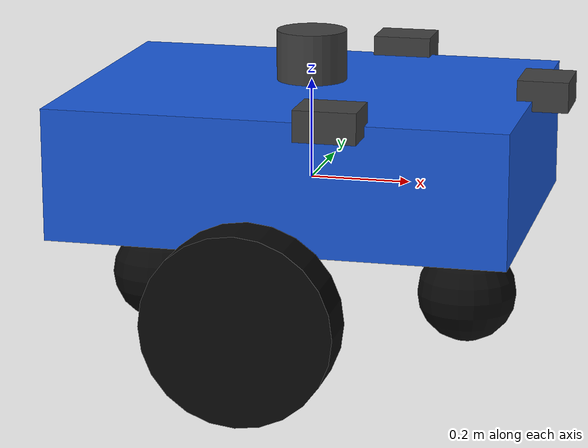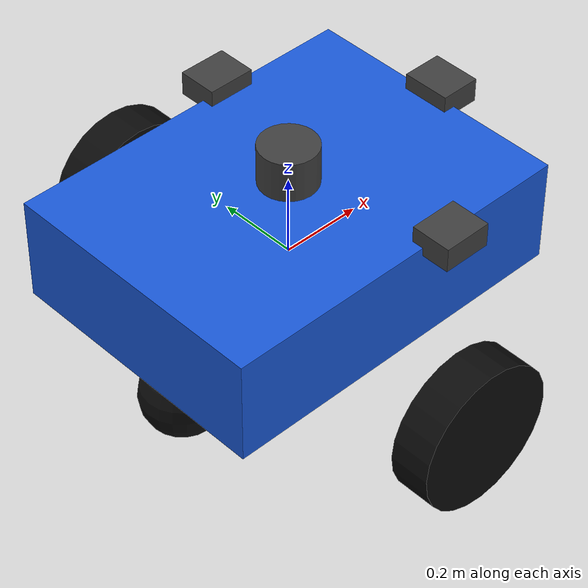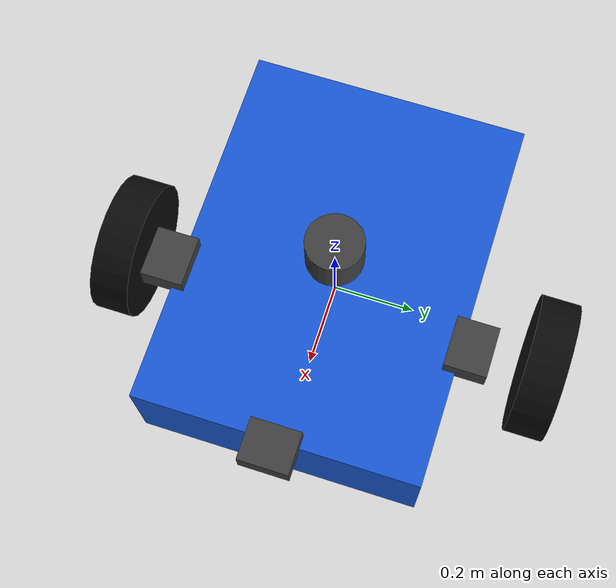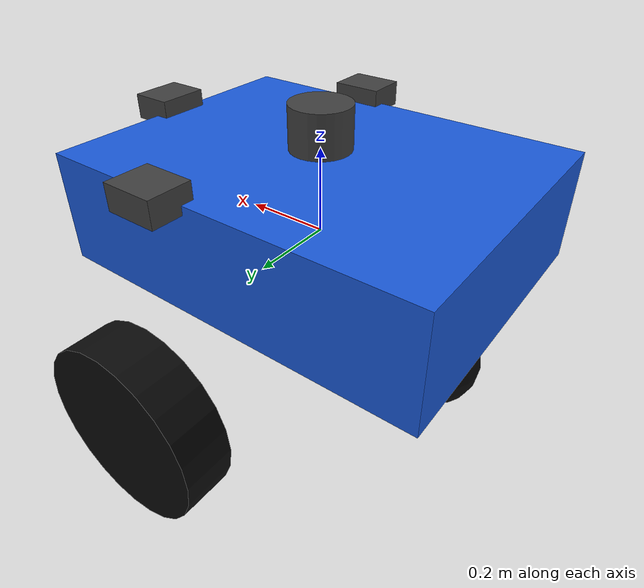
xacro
<?xml version="1.0"?>
<robot name="wildos_rover" xmlns:xacro="http://www.ros.org/wiki/xacro">
  <material name="body_blue">
    <color rgba="0.10 0.35 0.85 1.0"/>
  </material>
  <material name="wheel_dark">
    <color rgba="0.04 0.04 0.04 1.0"/>
  </material>
  <material name="sensor_gray">
    <color rgba="0.25 0.25 0.25 1.0"/>
  </material>

  <link name="base_link">
    <inertial>
      <!-- Ballast low in the chassis: the stand-in rover is 22 kg on 0.78 m
           wheels and rolled over on the bank in front of the house at
           0.8 m/s with the centre of mass at axle height. -->
      <origin xyz="0 0 -0.18" rpy="0 0 0"/>
      <mass value="18.0"/>
      <inertia ixx="0.50" ixy="0" ixz="0" iyy="0.82" iyz="0" izz="1.10"/>
    </inertial>
    <collision>
      <origin xyz="0 0 0.06" rpy="0 0 0"/>
      <geometry>
        <box size="0.90 0.68 0.26"/>
      </geometry>
    </collision>
    <visual>
      <origin xyz="0 0 0.06" rpy="0 0 0"/>
      <geometry>
        <box size="0.90 0.68 0.26"/>
      </geometry>
      <material name="body_blue"/>
    </visual>
  </link>

  <link name="left_wheel_link">
    <inertial>
      <origin xyz="0 0 0" rpy="0 0 0"/>
      <mass value="1.5"/>
      <inertia ixx="0.012" ixy="0" ixz="0" iyy="0.024" iyz="0" izz="0.012"/>
    </inertial>
    <collision>
      <origin xyz="0 0 0" rpy="1.5708 0 0"/>
      <geometry>
        <cylinder radius="0.18" length="0.10"/>
      </geometry>
    </collision>
    <visual>
      <origin xyz="0 0 0" rpy="1.5708 0 0"/>
      <geometry>
        <cylinder radius="0.18" length="0.10"/>
      </geometry>
      <material name="wheel_dark"/>
    </visual>
  </link>

  <link name="right_wheel_link">
    <inertial>
      <origin xyz="0 0 0" rpy="0 0 0"/>
      <mass value="1.5"/>
      <inertia ixx="0.012" ixy="0" ixz="0" iyy="0.024" iyz="0" izz="0.012"/>
    </inertial>
    <collision>
      <origin xyz="0 0 0" rpy="1.5708 0 0"/>
      <geometry>
        <cylinder radius="0.18" length="0.10"/>
      </geometry>
    </collision>
    <visual>
      <origin xyz="0 0 0" rpy="1.5708 0 0"/>
      <geometry>
        <cylinder radius="0.18" length="0.10"/>
      </geometry>
      <material name="wheel_dark"/>
    </visual>
  </link>

  <joint name="left_wheel_joint" type="continuous">
    <parent link="base_link"/>
    <child link="left_wheel_link"/>
    <origin xyz="0 0.55 -0.14" rpy="0 0 0"/>
    <axis xyz="0 1 0"/>
    <limit effort="100" velocity="20"/>
  </joint>

  <joint name="right_wheel_joint" type="continuous">
    <parent link="base_link"/>
    <child link="right_wheel_link"/>
    <origin xyz="0 -0.55 -0.14" rpy="0 0 0"/>
    <axis xyz="0 1 0"/>
    <limit effort="100" velocity="20"/>
  </joint>

  <link name="front_caster_link">
    <inertial>
      <mass value="0.2"/>
      <inertia ixx="0.001" ixy="0" ixz="0" iyy="0.001" iyz="0" izz="0.001"/>
    </inertial>
    <collision>
      <geometry><sphere radius="0.10"/></geometry>
    </collision>
    <visual>
      <geometry><sphere radius="0.10"/></geometry>
      <material name="wheel_dark"/>
    </visual>
  </link>

  <link name="rear_caster_link">
    <inertial>
      <mass value="0.2"/>
      <inertia ixx="0.001" ixy="0" ixz="0" iyy="0.001" iyz="0" izz="0.001"/>
    </inertial>
    <collision>
      <geometry><sphere radius="0.10"/></geometry>
    </collision>
    <visual>
      <geometry><sphere radius="0.10"/></geometry>
      <material name="wheel_dark"/>
    </visual>
  </link>

  <joint name="front_caster_joint" type="fixed">
    <parent link="base_link"/>
    <child link="front_caster_link"/>
    <origin xyz="0.32 0 -0.22" rpy="0 0 0"/>
  </joint>
  <joint name="rear_caster_joint" type="fixed">
    <parent link="base_link"/>
    <child link="rear_caster_link"/>
    <origin xyz="-0.32 0 -0.22" rpy="0 0 0"/>
  </joint>

  <link name="front_camera_link">
    <inertial>
      <mass value="0.1"/>
      <inertia ixx="0.0001" ixy="0" ixz="0" iyy="0.0001" iyz="0" izz="0.0001"/>
    </inertial>
    <visual>
      <geometry><box size="0.10 0.12 0.06"/></geometry>
      <material name="sensor_gray"/>
    </visual>
  </link>
  <joint name="front_camera_joint" type="fixed">
    <parent link="base_link"/>
    <child link="front_camera_link"/>
    <origin xyz="0.47 0 0.20" rpy="0 0 0"/>
  </joint>

  <link name="left_camera_link">
    <inertial>
      <mass value="0.1"/>
      <inertia ixx="0.0001" ixy="0" ixz="0" iyy="0.0001" iyz="0" izz="0.0001"/>
    </inertial>
    <visual>
      <geometry><box size="0.10 0.12 0.06"/></geometry>
      <material name="sensor_gray"/>
    </visual>
  </link>
  <joint name="left_camera_joint" type="fixed">
    <parent link="base_link"/>
    <child link="left_camera_link"/>
    <origin xyz="0.12 0.36 0.20" rpy="0 0 1.5708"/>
  </joint>

  <link name="right_camera_link">
    <inertial>
      <mass value="0.1"/>
      <inertia ixx="0.0001" ixy="0" ixz="0" iyy="0.0001" iyz="0" izz="0.0001"/>
    </inertial>
    <visual>
      <geometry><box size="0.10 0.12 0.06"/></geometry>
      <material name="sensor_gray"/>
    </visual>
  </link>
  <joint name="right_camera_joint" type="fixed">
    <parent link="base_link"/>
    <child link="right_camera_link"/>
    <origin xyz="0.12 -0.36 0.20" rpy="0 0 -1.5708"/>
  </joint>

  <link name="lidar_link">
    <inertial>
      <mass value="0.5"/>
      <inertia ixx="0.002" ixy="0" ixz="0" iyy="0.002" iyz="0" izz="0.002"/>
    </inertial>
    <visual>
      <geometry><cylinder radius="0.07" length="0.10"/></geometry>
      <material name="sensor_gray"/>
    </visual>
  </link>
  <joint name="lidar_joint" type="fixed">
    <parent link="base_link"/>
    <child link="lidar_link"/>
    <origin xyz="0 0 0.25" rpy="0 0 0"/>
  </joint>

  <link name="imu_link">
    <inertial>
      <mass value="0.05"/>
      <inertia ixx="0.00005" ixy="0" ixz="0" iyy="0.00005" iyz="0" izz="0.00005"/>
    </inertial>
  </link>
  <joint name="imu_joint" type="fixed">
    <parent link="base_link"/>
    <child link="imu_link"/>
    <origin xyz="0 0 0.02" rpy="0 0 0"/>
  </joint>

  <!-- Gazebo publishes sensor and odometry headers using scoped names. Keep
       matching TF aliases so downstream ROS nodes can look them up directly. -->
  <link name="wildos_rover/base_link"/>
  <joint name="gazebo_base_frame_joint" type="fixed">
    <parent link="base_link"/>
    <child link="wildos_rover/base_link"/>
  </joint>

  <link name="wildos_rover/base_link/front_camera"/>
  <joint name="gazebo_front_camera_frame_joint" type="fixed">
    <parent link="front_camera_link"/>
    <child link="wildos_rover/base_link/front_camera"/>
    <origin xyz="0 0 0" rpy="-1.5708 0 -1.5708"/>
  </joint>

  <link name="wildos_rover/base_link/left_camera"/>
  <joint name="gazebo_left_camera_frame_joint" type="fixed">
    <parent link="left_camera_link"/>
    <child link="wildos_rover/base_link/left_camera"/>
    <origin xyz="0 0 0" rpy="-1.5708 0 -1.5708"/>
  </joint>

  <link name="wildos_rover/base_link/right_camera"/>
  <joint name="gazebo_right_camera_frame_joint" type="fixed">
    <parent link="right_camera_link"/>
    <child link="wildos_rover/base_link/right_camera"/>
    <origin xyz="0 0 0" rpy="-1.5708 0 -1.5708"/>
  </joint>

  <link name="wildos_rover/base_link/lidar"/>
  <joint name="gazebo_lidar_frame_joint" type="fixed">
    <parent link="lidar_link"/>
    <child link="wildos_rover/base_link/lidar"/>
  </joint>

  <link name="wildos_rover/base_link/imu"/>
  <joint name="gazebo_imu_frame_joint" type="fixed">
    <parent link="imu_link"/>
    <child link="wildos_rover/base_link/imu"/>
  </joint>

  <gazebo reference="left_wheel_link">
    <mu1>1.0</mu1>
    <mu2>1.0</mu2>
  </gazebo>
  <gazebo reference="right_wheel_link">
    <mu1>1.0</mu1>
    <mu2>1.0</mu2>
  </gazebo>

  <gazebo reference="front_camera_link">
    <sensor name="front_camera" type="camera">
      <topic>/spot1/realsense/front/color/camera</topic>
      <always_on>true</always_on>
      <update_rate>20</update_rate>
      <visualize>false</visualize>
      <camera name="front_camera">
        <horizontal_fov>1.518</horizontal_fov>
        <image>
          <width>640</width>
          <height>480</height>
          <format>R8G8B8</format>
        </image>
        <clip><near>0.10</near><far>100.0</far></clip>
      </camera>
    </sensor>
  </gazebo>

  <gazebo reference="left_camera_link">
    <sensor name="left_camera" type="camera">
      <topic>/spot1/realsense/left/color/camera</topic>
      <always_on>true</always_on>
      <update_rate>20</update_rate>
      <visualize>false</visualize>
      <camera name="left_camera">
        <horizontal_fov>1.518</horizontal_fov>
        <image>
          <width>640</width>
          <height>480</height>
          <format>R8G8B8</format>
        </image>
        <clip><near>0.10</near><far>100.0</far></clip>
      </camera>
    </sensor>
  </gazebo>

  <gazebo reference="right_camera_link">
    <sensor name="right_camera" type="camera">
      <topic>/spot1/realsense/right/color/camera</topic>
      <always_on>true</always_on>
      <update_rate>20</update_rate>
      <visualize>false</visualize>
      <camera name="right_camera">
        <horizontal_fov>1.518</horizontal_fov>
        <image>
          <width>640</width>
          <height>480</height>
          <format>R8G8B8</format>
        </image>
        <clip><near>0.10</near><far>100.0</far></clip>
      </camera>
    </sensor>
  </gazebo>

  <gazebo reference="lidar_link">
    <sensor name="lidar" type="gpu_lidar">
      <topic>/spot1/lidar</topic>
      <always_on>true</always_on>
      <update_rate>10</update_rate>
      <visualize>false</visualize>
      <lidar>
        <scan>
          <horizontal>
            <samples>720</samples>
            <resolution>1</resolution>
            <min_angle>-3.14159</min_angle>
            <max_angle>3.14159</max_angle>
          </horizontal>
          <vertical>
            <samples>16</samples>
            <resolution>1</resolution>
            <min_angle>-0.45</min_angle>
            <max_angle>0.45</max_angle>
          </vertical>
        </scan>
        <range>
          <min>0.30</min>
          <max>30.0</max>
          <resolution>0.01</resolution>
        </range>
      </lidar>
    </sensor>
  </gazebo>

  <gazebo reference="imu_link">
    <sensor name="imu" type="imu">
      <topic>/spot1/imu</topic>
      <always_on>true</always_on>
      <update_rate>30</update_rate>
      <visualize>false</visualize>
    </sensor>
  </gazebo>

  <gazebo>
    <plugin filename="gz-sim-diff-drive-system" name="gz::sim::systems::DiffDrive">
      <left_joint>left_wheel_joint</left_joint>
      <right_joint>right_wheel_joint</right_joint>
      <wheel_separation>1.10</wheel_separation>
      <wheel_radius>0.18</wheel_radius>
      <odom_publish_frequency>20</odom_publish_frequency>
      <max_linear_velocity>1.2</max_linear_velocity>
      <!-- Stand-in chassis on 10-15 deg terrain: the diff-drive default of
           5 Nm is right at the stall point (22 kg, wheel r=0.18 m), which
           made Nav2 command motion that never happened. -->
      <max_wheel_torque>25</max_wheel_torque>
      <max_wheel_acceleration>4</max_wheel_acceleration>
      <max_angular_velocity>1.5</max_angular_velocity>
      <min_linear_velocity>-0.5</min_linear_velocity>
      <min_angular_velocity>-1.5</min_angular_velocity>
    </plugin>
    <plugin filename="gz-sim-joint-state-publisher-system" name="gz::sim::systems::JointStatePublisher"/>
  </gazebo>
</robot>
